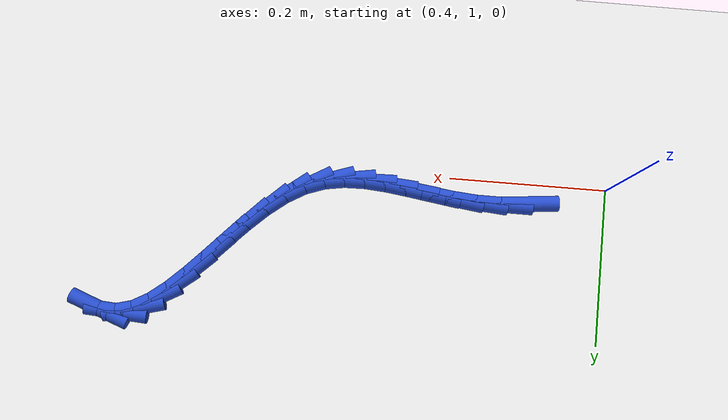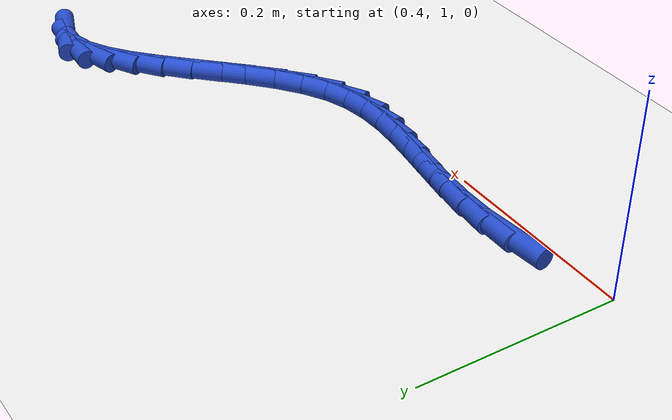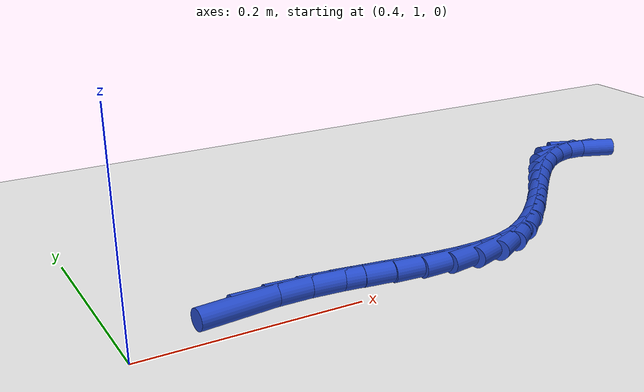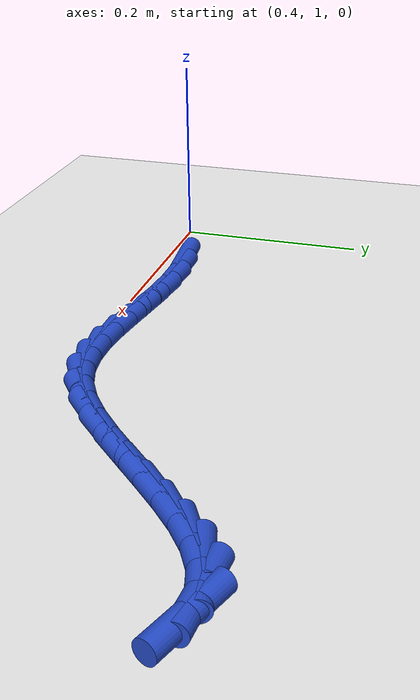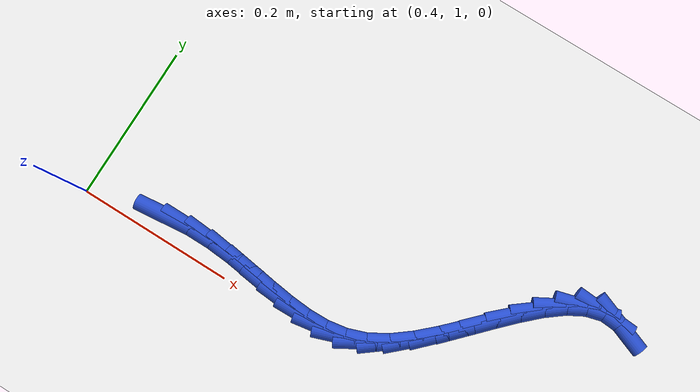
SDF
<sdf version="1.6">
 <world name="default">
  <model name="ground_plane">
   <static>1</static>
   <link name="link">
    <collision name="collision">
     <geometry><plane><normal>0 0 1</normal><size>100 100</size></plane></geometry>
     <surface><friction><ode><mu>100</mu><mu2>50</mu2></ode></friction></surface>
    </collision>
    <visual name="visual">
     <cast_shadows>0</cast_shadows>
     <geometry><plane><normal>0 0 1</normal><size>100 100</size></plane></geometry>
     <material>
      <script><uri>file://media/materials/scripts/gazebo.material</uri><name>Gazebo/WhiteGlow</name></script>
     </material>
    </visual>
   </link>
  </model>
  <model name="line">
   <link name="link_44">
    <pose>0.5015104829996906 1.0264966111683604 0.01 0 1.57 0.10239759043898637</pose>
    <collision name="collision">
     <geometry><cylinder><radius>0.01</radius><length>0.08</length></cylinder></geometry>
    </collision>
    <visual name="visual">
     <material>
      <script><name>Gazebo/Blue</name><uri>file://media/materials/scripts/gazebo.material</uri></script>
     </material>
     <geometry><cylinder><radius>0.01</radius><length>0.08</length></cylinder></geometry>
    </visual>
   </link>
   <link name="link_45">
    <pose>0.5340093413587871 1.029836095919191 0.01 0 1.57 -0.0006746404395531789</pose>
    <collision name="collision">
     <geometry><cylinder><radius>0.01</radius><length>0.08</length></cylinder></geometry>
    </collision>
    <visual name="visual">
     <material>
      <script><name>Gazebo/Blue</name><uri>file://media/materials/scripts/gazebo.material</uri></script>
     </material>
     <geometry><cylinder><radius>0.01</radius><length>0.08</length></cylinder></geometry>
    </visual>
   </link>
   <link name="link_46">
    <pose>0.5654837562095326 1.0298148620029 0.01 0 1.57 -0.07827881950971081</pose>
    <collision name="collision">
     <geometry><cylinder><radius>0.01</radius><length>0.08</length></cylinder></geometry>
    </collision>
    <visual name="visual">
     <material>
      <script><name>Gazebo/Blue</name><uri>file://media/materials/scripts/gazebo.material</uri></script>
     </material>
     <geometry><cylinder><radius>0.01</radius><length>0.08</length></cylinder></geometry>
    </visual>
   </link>
   <link name="link_47">
    <pose>0.5959749140859301 1.0274231630583395 0.01 0 1.57 -0.12695988755573065</pose>
    <collision name="collision">
     <geometry><cylinder><radius>0.01</radius><length>0.08</length></cylinder></geometry>
    </collision>
    <visual name="visual">
     <material>
      <script><name>Gazebo/Blue</name><uri>file://media/materials/scripts/gazebo.material</uri></script>
     </material>
     <geometry><cylinder><radius>0.01</radius><length>0.08</length></cylinder></geometry>
    </visual>
   </link>
   <link name="link_48">
    <pose>0.625524044524338 1.023651321097768 0.01 0 1.57 -0.1442581065695643</pose>
    <collision name="collision">
     <geometry><cylinder><radius>0.01</radius><length>0.08</length></cylinder></geometry>
    </collision>
    <visual name="visual">
     <material>
      <script><name>Gazebo/Blue</name><uri>file://media/materials/scripts/gazebo.material</uri></script>
     </material>
     <geometry><cylinder><radius>0.01</radius><length>0.08</length></cylinder></geometry>
    </visual>
   </link>
   <link name="link_49">
    <pose>0.6541723770611149 1.0194896581334443 0.01 0 1.57 -0.12745644792053842</pose>
    <collision name="collision">
     <geometry><cylinder><radius>0.01</radius><length>0.08</length></cylinder></geometry>
    </collision>
    <visual name="visual">
     <material>
      <script><name>Gazebo/Blue</name><uri>file://media/materials/scripts/gazebo.material</uri></script>
     </material>
     <geometry><cylinder><radius>0.01</radius><length>0.08</length></cylinder></geometry>
    </visual>
   </link>
   <link name="link_50">
    <pose>0.6819611412326193 1.0159284961776254 0.01 0 1.57 -0.07292598415092778</pose>
    <collision name="collision">
     <geometry><cylinder><radius>0.01</radius><length>0.08</length></cylinder></geometry>
    </collision>
    <visual name="visual">
     <material>
      <script><name>Gazebo/Blue</name><uri>file://media/materials/scripts/gazebo.material</uri></script>
     </material>
     <geometry><cylinder><radius>0.01</radius><length>0.08</length></cylinder></geometry>
    </visual>
   </link>
   <link name="link_51">
    <pose>0.7089315665752096 1.0139581572425704 0.01 0 1.57 0.023314933380365513</pose>
    <collision name="collision">
     <geometry><cylinder><radius>0.01</radius><length>0.08</length></cylinder></geometry>
    </collision>
    <visual name="visual">
     <material>
      <script><name>Gazebo/Blue</name><uri>file://media/materials/scripts/gazebo.material</uri></script>
     </material>
     <geometry><cylinder><radius>0.01</radius><length>0.08</length></cylinder></geometry>
    </visual>
   </link>
   <link name="link_52">
    <pose>0.735124882625244 1.0145689633405375 0.01 0 1.57 0.16283042092886443</pose>
    <collision name="collision">
     <geometry><cylinder><radius>0.01</radius><length>0.08</length></cylinder></geometry>
    </collision>
    <visual name="visual">
     <material>
      <script><name>Gazebo/Blue</name><uri>file://media/materials/scripts/gazebo.material</uri></script>
     </material>
     <geometry><cylinder><radius>0.01</radius><length>0.08</length></cylinder></geometry>
    </visual>
   </link>
   <link name="link_53">
    <pose>0.7605823189190809 1.0187512364837845 0.01 0 1.57 0.3394454157202497</pose>
    <collision name="collision">
     <geometry><cylinder><radius>0.01</radius><length>0.08</length></cylinder></geometry>
    </collision>
    <visual name="visual">
     <material>
      <script><name>Gazebo/Blue</name><uri>file://media/materials/scripts/gazebo.material</uri></script>
     </material>
     <geometry><cylinder><radius>0.01</radius><length>0.08</length></cylinder></geometry>
    </visual>
   </link>
   <link name="link_54">
    <pose>0.7853451049930792 1.0274952986845696 0.01 0 1.57 0.5251894603597642</pose>
    <collision name="collision">
     <geometry><cylinder><radius>0.01</radius><length>0.08</length></cylinder></geometry>
    </collision>
    <visual name="visual">
     <material>
      <script><name>Gazebo/Blue</name><uri>file://media/materials/scripts/gazebo.material</uri></script>
     </material>
     <geometry><cylinder><radius>0.01</radius><length>0.08</length></cylinder></geometry>
    </visual>
   </link>
   <link name="link_55">
    <pose>0.8094586706737539 1.0414684621517336 0.01 0 1.57 0.6620279912062859</pose>
    <collision name="collision">
     <geometry><cylinder><radius>0.01</radius><length>0.08</length></cylinder></geometry>
    </collision>
    <visual name="visual">
     <material>
      <script><name>Gazebo/Blue</name><uri>file://media/materials/scripts/gazebo.material</uri></script>
     </material>
     <geometry><cylinder><radius>0.01</radius><length>0.08</length></cylinder></geometry>
    </visual>
   </link>
   <link name="link_56">
    <pose>0.832988360643213 1.0598065511847445 0.01 0 1.57 0.7486679545010145</pose>
    <collision name="collision">
     <geometry><cylinder><radius>0.01</radius><length>0.08</length></cylinder></geometry>
    </collision>
    <visual name="visual">
     <material>
      <script><name>Gazebo/Blue</name><uri>file://media/materials/scripts/gazebo.material</uri></script>
     </material>
     <geometry><cylinder><radius>0.01</radius><length>0.08</length></cylinder></geometry>
    </visual>
   </link>
   <link name="link_57">
    <pose>0.8560054157975348 1.08119196071419 0.01 0 1.57 0.7972029272546761</pose>
    <collision name="collision">
     <geometry><cylinder><radius>0.01</radius><length>0.08</length></cylinder></geometry>
    </collision>
    <visual name="visual">
     <material>
      <script><name>Gazebo/Blue</name><uri>file://media/materials/scripts/gazebo.material</uri></script>
     </material>
     <geometry><cylinder><radius>0.01</radius><length>0.08</length></cylinder></geometry>
    </visual>
   </link>
   <link name="link_58">
    <pose>0.8785810779382385 1.1043070160405464 0.01 0 1.57 0.8142867387462115</pose>
    <collision name="collision">
     <geometry><cylinder><radius>0.01</radius><length>0.08</length></cylinder></geometry>
    </collision>
    <visual name="visual">
     <material>
      <script><name>Gazebo/Blue</name><uri>file://media/materials/scripts/gazebo.material</uri></script>
     </material>
     <geometry><cylinder><radius>0.01</radius><length>0.08</length></cylinder></geometry>
    </visual>
   </link>
   <link name="link_59">
    <pose>0.9007865888668427 1.12783404246429 0.01 0 1.57 0.8014478657824622</pose>
    <collision name="collision">
     <geometry><cylinder><radius>0.01</radius><length>0.08</length></cylinder></geometry>
    </collision>
    <visual name="visual">
     <material>
      <script><name>Gazebo/Blue</name><uri>file://media/materials/scripts/gazebo.material</uri></script>
     </material>
     <geometry><cylinder><radius>0.01</radius><length>0.08</length></cylinder></geometry>
    </visual>
   </link>
   <link name="link_60">
    <pose>0.9226931903848674 1.1504553652858978 0.01 0 1.57 0.7549635422936344</pose>
    <collision name="collision">
     <geometry><cylinder><radius>0.01</radius><length>0.08</length></cylinder></geometry>
    </collision>
    <visual name="visual">
     <material>
      <script><name>Gazebo/Blue</name><uri>file://media/materials/scripts/gazebo.material</uri></script>
     </material>
     <geometry><cylinder><radius>0.01</radius><length>0.08</length></cylinder></geometry>
    </visual>
   </link>
   <link name="link_61">
    <pose>0.9443721242938319 1.1708533098058467 0.01 0 1.57 0.6644261017484699</pose>
    <collision name="collision">
     <geometry><cylinder><radius>0.01</radius><length>0.08</length></cylinder></geometry>
    </collision>
    <visual name="visual">
     <material>
      <script><name>Gazebo/Blue</name><uri>file://media/materials/scripts/gazebo.material</uri></script>
     </material>
     <geometry><cylinder><radius>0.01</radius><length>0.08</length></cylinder></geometry>
    </visual>
   </link>
   <link name="link_62">
    <pose>0.9658946323952552 1.1877102013246126 0.01 0 1.57 0.5102490264044575</pose>
    <collision name="collision">
     <geometry><cylinder><radius>0.01</radius><length>0.08</length></cylinder></geometry>
    </collision>
    <visual name="visual">
     <material>
      <script><name>Gazebo/Blue</name><uri>file://media/materials/scripts/gazebo.material</uri></script>
     </material>
     <geometry><cylinder><radius>0.01</radius><length>0.08</length></cylinder></geometry>
    </visual>
   </link>
   <link name="link_63">
    <pose>0.9873319564906566 1.1997083651426723 0.01 0 1.57 0.26534035609222084</pose>
    <collision name="collision">
     <geometry><cylinder><radius>0.01</radius><length>0.08</length></cylinder></geometry>
    </collision>
    <visual name="visual">
     <material>
      <script><name>Gazebo/Blue</name><uri>file://media/materials/scripts/gazebo.material</uri></script>
     </material>
     <geometry><cylinder><radius>0.01</radius><length>0.08</length></cylinder></geometry>
    </visual>
   </link>
   <link name="link_64">
    <pose>1.0087553383815557 1.2055301265605027 0.01 0 1.57 -0.06865727389634806</pose>
    <collision name="collision">
     <geometry><cylinder><radius>0.01</radius><length>0.08</length></cylinder></geometry>
    </collision>
    <visual name="visual">
     <material>
      <script><name>Gazebo/Blue</name><uri>file://media/materials/scripts/gazebo.material</uri></script>
     </material>
     <geometry><cylinder><radius>0.01</radius><length>0.08</length></cylinder></geometry>
    </visual>
   </link>
   <link name="link_65">
    <pose>1.0302363352045496 1.2040529781438092 0.01 0 1.57 -0.3663652059917775</pose>
    <collision name="collision">
     <geometry><cylinder><radius>0.01</radius><length>0.08</length></cylinder></geometry>
    </collision>
    <visual name="visual">
     <material>
      <script><name>Gazebo/Blue</name><uri>file://media/materials/scripts/gazebo.material</uri></script>
     </material>
     <geometry><cylinder><radius>0.01</radius><length>0.08</length></cylinder></geometry>
    </visual>
   </link>
  </model>
 </world>
</sdf>
